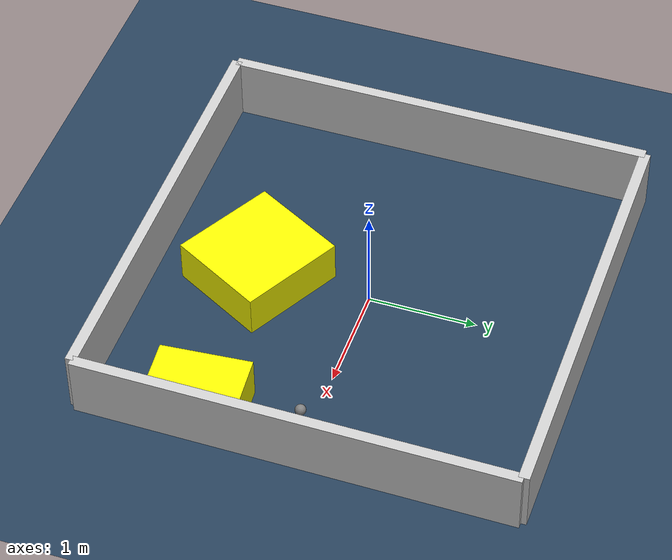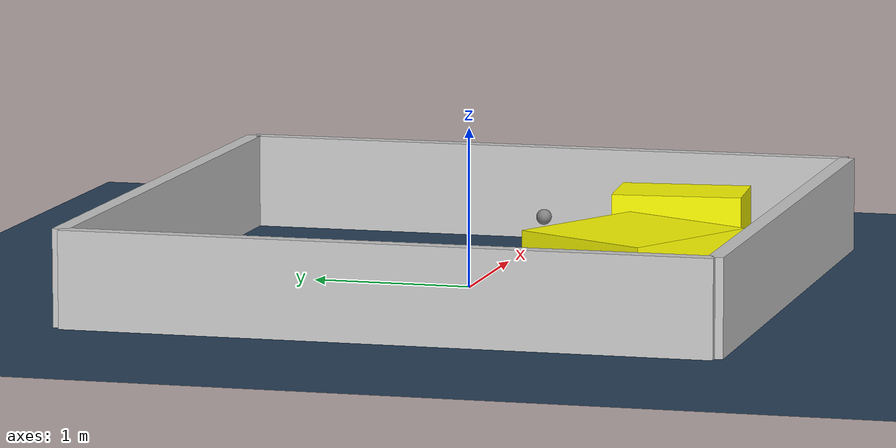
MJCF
<?xml version="1.0" ?>
<mujoco model="generated_environment">
  <option timestep="0.01" integrator="RK4" cone="elliptic"/>
  <default>
    <geom density="1"/>
  </default>
  <asset>
    <texture builtin="gradient" height="3072" rgb1="0.3 0.5 0.7" rgb2="0 0 0" type="skybox" width="512"/>
    <texture builtin="checker" height="300" mark="edge" markrgb="0.8 0.8 0.8" name="groundplane" rgb1="0.2 0.3 0.4" rgb2="0.1 0.2 0.3" type="2d" width="300"/>
    <material name="groundplane" reflectance="0.2" texrepeat="5 5" texture="groundplane" texuniform="true"/>
    <material name="robot" rgba="0.0 1.0 0.0 1"/>
  </asset>
  <worldbody>
    <light dir="0 0 -1" directional="true" pos="0 0 1.5"/>
    <geom condim="4" friction="1.0 0.005 0.001" material="groundplane" name="floor" size="0 0 0.05" type="plane"/>
    <body name="walls">
      <geom name="wall_1" condim="4" pos="-2.0 0.0 0.3" rgba="0.800000011920929 0.800000011920929 0.800000011920929 1.0" size="0.05 2.0 0.3" type="box"/>
      <geom name="wall_2" condim="4" pos="2.0 0.0 0.3" rgba="0.800000011920929 0.800000011920929 0.800000011920929 1.0" size="0.05 2.0 0.3" type="box"/>
      <geom name="wall_3" condim="4" pos="0.0 -2.0 0.3" rgba="0.800000011920929 0.800000011920929 0.800000011920929 1.0" size="2.0 0.05 0.3" type="box"/>
      <geom name="wall_4" condim="4" pos="0.0 2.0 0.3" rgba="0.800000011920929 0.800000011920929 0.800000011920929 1.0" size="2.0 0.05 0.3" type="box"/>
    </body>
    <body name="robot">
      <joint name="joint_x" type="slide" pos="0 0 0" axis="1 0 0"/>
      <joint name="joint_y" type="slide" pos="0 0 0" axis="0 1 0"/>
      <geom name="robot" type="sphere" pos="1.5811015918292943 -0.08576555422481813 0.2" size="0.05" mass="5." friction="1.0 0.005 0.0001" condim="4"/>
      <site name="sensor_ball"/>
    </body>
    <body name="obstacle_1_movable">
      <geom name="obstacle_1_movable" condim="4" pos="1.6556737747664363 -0.9830708648801448 0.2" euler="0 0 4.89642494363562" friction="1.0 0.005 0.001" rgba="1 1 0 1" size="0.25692781722883606 0.4188604249957756 0.2" type="box" mass="0.1"/>
      <joint type="free"/>
    </body>
    <body name="obstacle_2_movable">
      <geom name="obstacle_2_movable" condim="4" pos="0.052210905495100546 -1.038413815798428 0.2" euler="0 0 331.63920918007307" friction="1.0 0.005 0.001" rgba="1 1 0 1" size="0.5043214529737858 0.4773295599965882 0.2" type="box" mass="0.1"/>
      <joint type="free"/>
    </body>
  </worldbody>
  <actuator>
    <motor name="actuator_x" joint="joint_x" gear="1" ctrlrange="-1 1"/>
    <motor name="actuator_y" joint="joint_y" gear="1" ctrlrange="-1 1"/>
  </actuator>
</mujoco>
